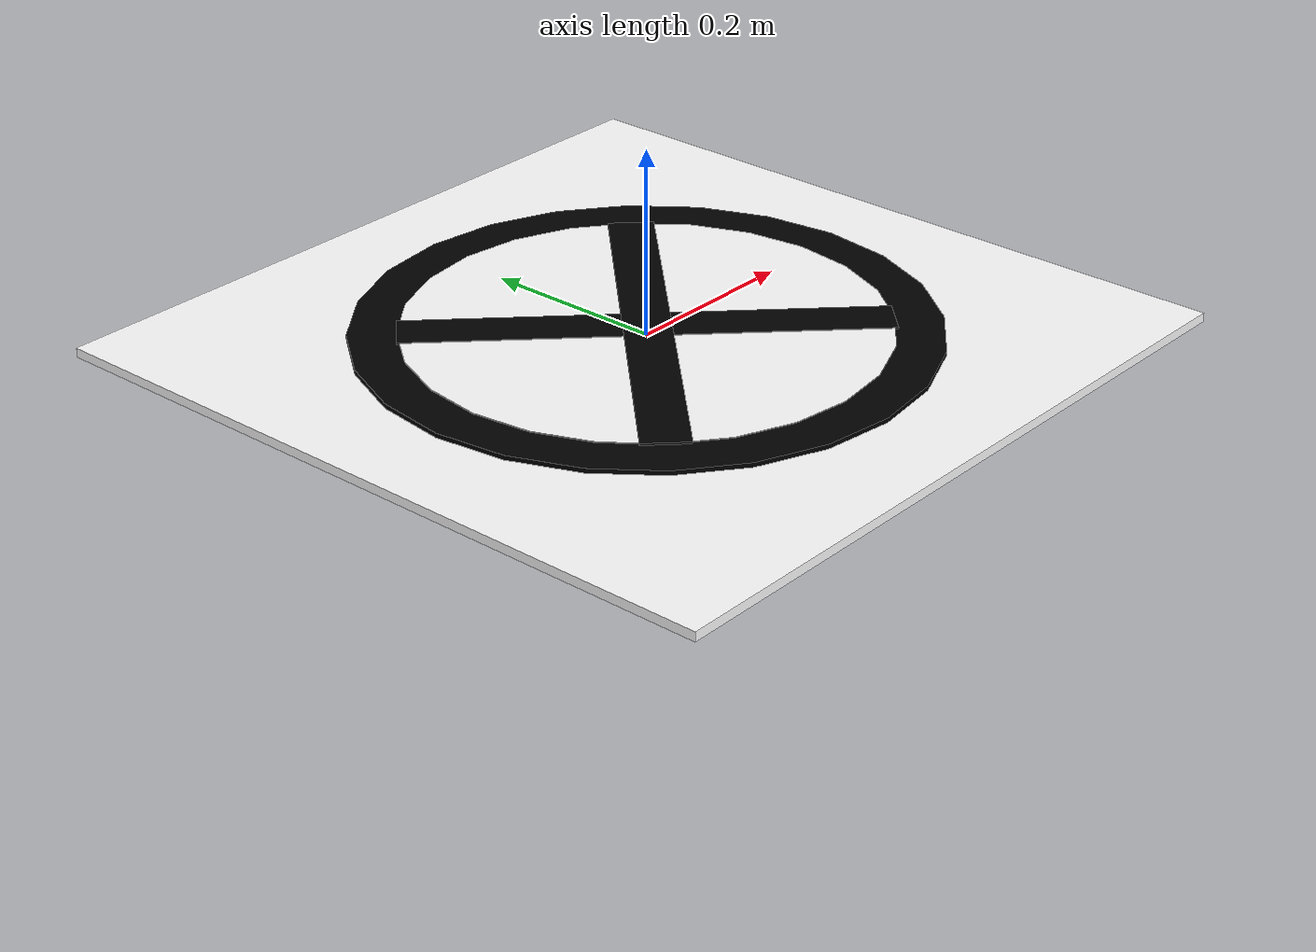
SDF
<?xml version='1.0'?>
<sdf version="1.7">
  <model name="character_X">
    <static>true</static>
    <link name="main_link">
      <!-- 基础结构 -->
      <visual name="base">
        <geometry>
          <box>
            <size>0.8 0.8 0.01</size>
          </box>
        </geometry>
        <material>
          <ambient>1 1 1 1</ambient>
          <diffuse>1 1 1 1</diffuse>
        </material>
      </visual>

      <visual name="outer_ring">
        <pose>0 0 0.005 0 0 0</pose>
        <geometry>
          <cylinder>
            <radius>0.3</radius>
            <length>0.01</length>
          </cylinder>
        </geometry>
        <material>
          <ambient>0 0 0 1</ambient>
          <diffuse>0 0 0 1</diffuse>
        </material>
      </visual>

      <visual name="inner_circle">
        <pose>0 0 0.006 0 0 0</pose>
        <geometry>
          <cylinder>
            <radius>0.25</radius>
            <length>0.01</length>
          </cylinder>
        </geometry>
        <material>
          <ambient>1 1 1 1</ambient>
          <diffuse>1 1 1 1</diffuse>
        </material>
      </visual>

      <!-- X字母结构 -->
      <visual name="x_left">
        <pose>0 0 0.007 0 0 0.785</pose>
        <geometry>
          <box>
            <size>0.05 0.5 0.01</size>
          </box>
        </geometry>
        <material>
          <ambient>0 0 0 1</ambient>
          <diffuse>0 0 0 1</diffuse>
        </material>
      </visual>

      <visual name="x_right">
        <pose>0 0 0.007 0 0 -0.785</pose>
        <geometry>
          <box>
            <size>0.05 0.5 0.01</size>
          </box>
        </geometry>
        <material>
          <ambient>0 0 0 1</ambient>
          <diffuse>0 0 0 1</diffuse>
        </material>
      </visual>
    </link>
  </model>
</sdf>
